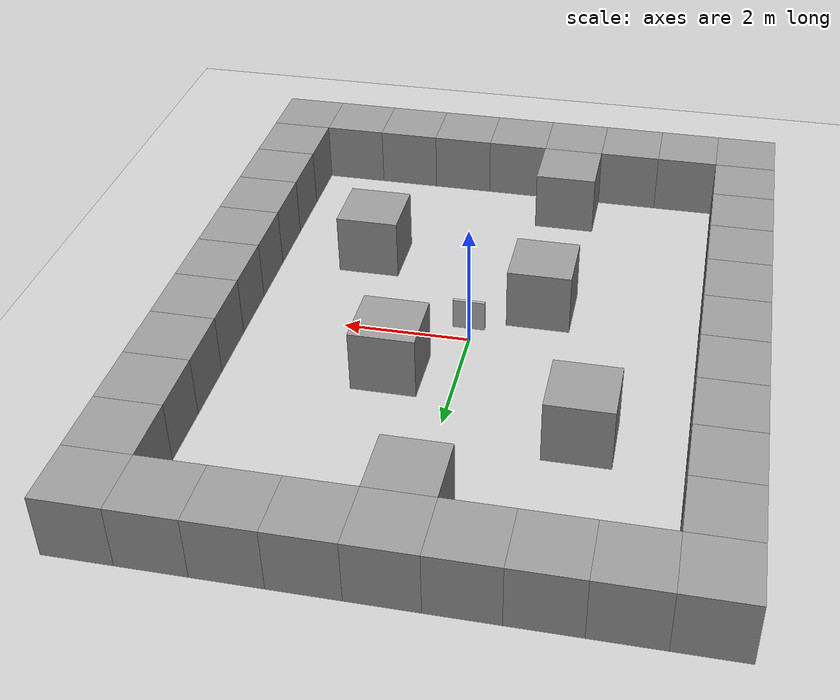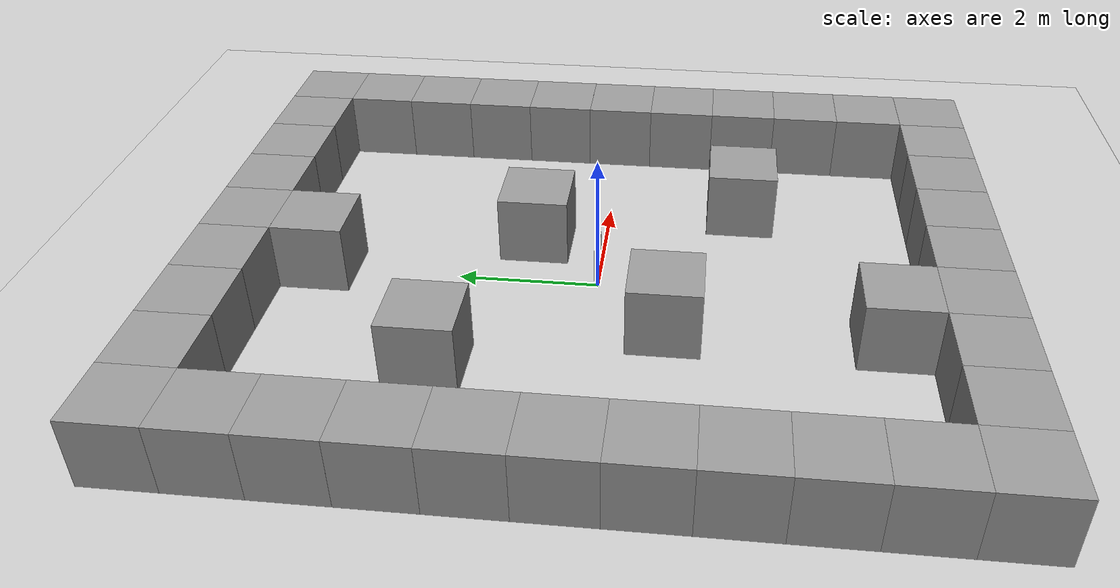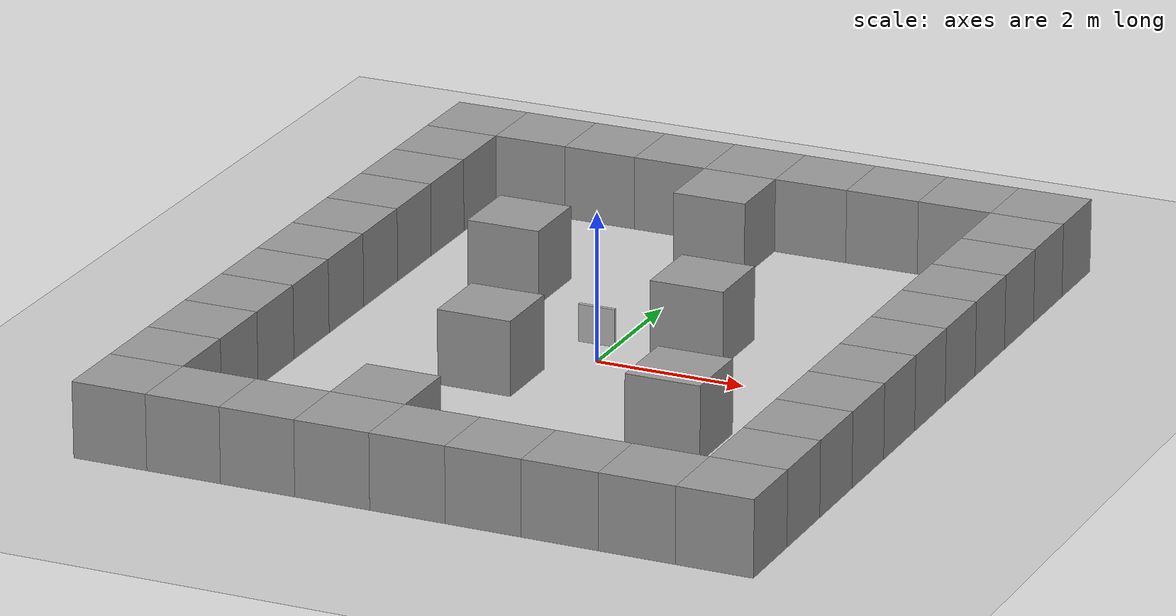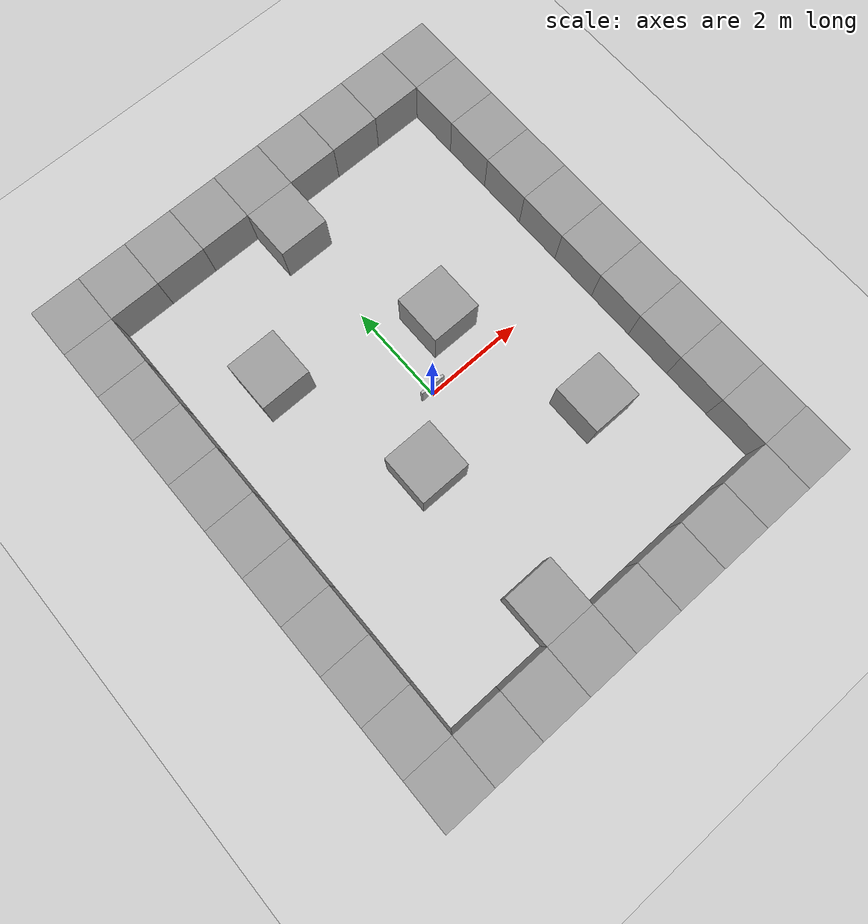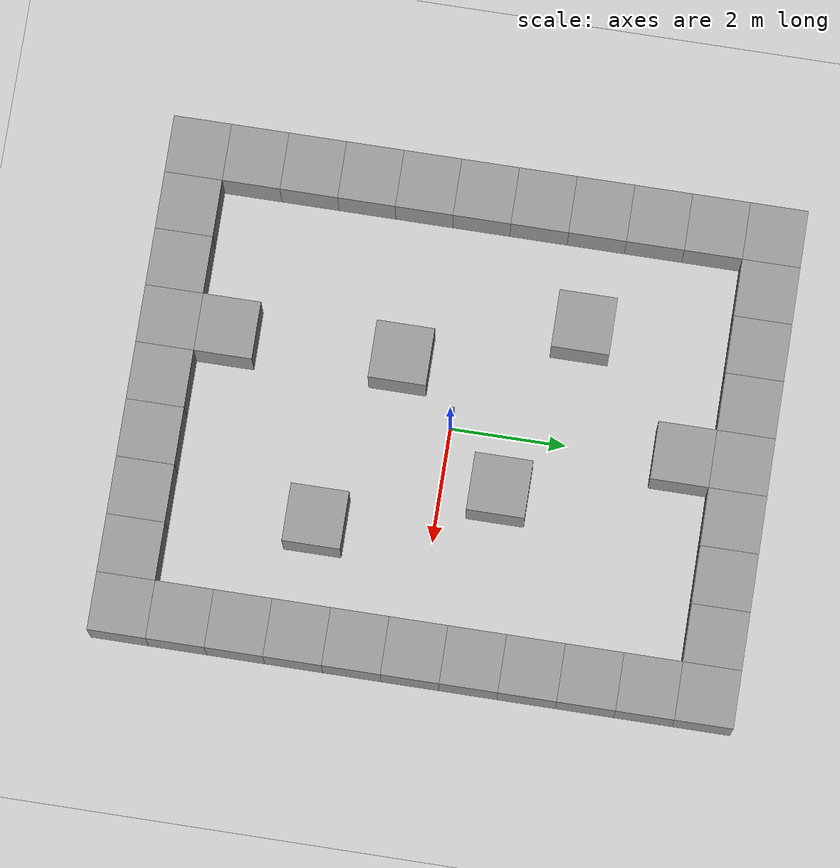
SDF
<sdf version="1.6">
 <world name="default">
  <include><uri>barbiebox</uri><pose>0 0 0.5 0 0 0</pose></include>
  <light name="sun" type="directional">
   <pose>0 0 10 0 -0 0</pose>
   <diffuse>0.8 0.8 0.8 1</diffuse>
   <specular>0.2 0.2 0.2 1</specular>
   <attenuation>
    <range>1000</range>
    <constant>0.9</constant>
    <linear>0.01</linear>
    <quadratic>0.001</quadratic>
   </attenuation>
   <direction>-0.5 0.1 -0.9</direction>
  </light>
  <model name="ground_plane">
   <static>1</static>
   <link name="link">
    <collision name="collision">
     <geometry><plane><normal>0 0 1</normal><size>100 100</size></plane></geometry>
     <surface>
      <contact><collide_bitmask>65535</collide_bitmask></contact>
      <friction><ode><mu>100</mu><mu2>50</mu2></ode></friction>
     </surface>
    </collision>
    <visual name="visual">
     <cast_shadows>0</cast_shadows>
     <geometry><plane><normal>0 0 1</normal><size>100 100</size></plane></geometry>
     <material>
      <script><uri>file://media/materials/scripts/gazebo.material</uri><name>Gazebo/Grey</name></script>
     </material>
    </visual>
   </link>
  </model>
  <gravity>0 0 -9.8</gravity>
  <magnetic_field>6e-06 2.3e-05 -4.2e-05</magnetic_field>
  <atmosphere type="adiabatic"/>
  <physics name="default_physics" default="0" type="ode">
   <max_step_size>0.001</max_step_size>
   <real_time_factor>1</real_time_factor>
   <real_time_update_rate>1000</real_time_update_rate>
  </physics>
  <scene><ambient>0.4 0.4 0.4 1</ambient><background>0.7 0.7 0.7 1</background><shadows>1</shadows></scene>
  <spherical_coordinates>
   <surface_model>EARTH_WGS84</surface_model>
   <latitude_deg>0</latitude_deg>
   <longitude_deg>0</longitude_deg>
   <elevation>0</elevation>
   <heading_deg>0</heading_deg>
  </spherical_coordinates>
  <model name="unit_box">
   <pose>-1 -0.999994 0.499995 -1e-05 -0 -0</pose>
   <link name="link">
    <inertial>
     <mass>1</mass>
     <inertia>
      <ixx>0.166667</ixx>
      <ixy>0</ixy>
      <ixz>0</ixz>
      <iyy>0.166667</iyy>
      <iyz>0</iyz>
      <izz>0.166667</izz>
     </inertia>
    </inertial>
    <collision name="collision"><geometry><box><size>1 1 1</size></box></geometry></collision>
    <visual name="visual">
     <geometry><box><size>1 1 1</size></box></geometry>
     <material>
      <script><name>Gazebo/Grey</name><uri>file://media/materials/scripts/gazebo.material</uri></script>
     </material>
    </visual>
   </link>
  </model>
  <model name="unit_box_0">
   <pose>1 1 0.499995 0 1e-05 0</pose>
   <link name="link">
    <inertial>
     <mass>1</mass>
     <inertia>
      <ixx>0.166667</ixx>
      <ixy>0</ixy>
      <ixz>0</ixz>
      <iyy>0.166667</iyy>
      <iyz>0</iyz>
      <izz>0.166667</izz>
     </inertia>
    </inertial>
    <collision name="collision"><geometry><box><size>1 1 1</size></box></geometry></collision>
    <visual name="visual">
     <geometry><box><size>1 1 1</size></box></geometry>
     <material>
      <script><name>Gazebo/Grey</name><uri>file://media/materials/scripts/gazebo.material</uri></script>
     </material>
    </visual>
   </link>
  </model>
  <model name="unit_box_1">
   <pose>-2 2.00001 0.499995 -1e-05 -0 -0</pose>
   <link name="link">
    <inertial>
     <mass>1</mass>
     <inertia>
      <ixx>0.166667</ixx>
      <ixy>0</ixy>
      <ixz>0</ixz>
      <iyy>0.166667</iyy>
      <iyz>0</iyz>
      <izz>0.166667</izz>
     </inertia>
    </inertial>
    <collision name="collision"><geometry><box><size>1 1 1</size></box></geometry></collision>
    <visual name="visual">
     <geometry><box><size>1 1 1</size></box></geometry>
     <material>
      <script><name>Gazebo/Grey</name><uri>file://media/materials/scripts/gazebo.material</uri></script>
     </material>
    </visual>
   </link>
  </model>
  <model name="unit_box_2">
   <pose>2 -2 0.499995 0 1e-05 0</pose>
   <link name="link">
    <inertial>
     <mass>1</mass>
     <inertia>
      <ixx>0.166667</ixx>
      <ixy>0</ixy>
      <ixz>0</ixz>
      <iyy>0.166667</iyy>
      <iyz>0</iyz>
      <izz>0.166667</izz>
     </inertia>
    </inertial>
    <collision name="collision"><geometry><box><size>1 1 1</size></box></geometry></collision>
    <visual name="visual">
     <geometry><box><size>1 1 1</size></box></geometry>
     <material>
      <script><name>Gazebo/Grey</name><uri>file://media/materials/scripts/gazebo.material</uri></script>
     </material>
    </visual>
   </link>
  </model>
  <model name="unit_box_3">
   <pose>4e-06 3.99999 0.499995 0 -1e-05 2e-06</pose>
   <link name="link">
    <inertial>
     <mass>1</mass>
     <inertia>
      <ixx>0.166667</ixx>
      <ixy>0</ixy>
      <ixz>0</ixz>
      <iyy>0.166667</iyy>
      <iyz>0</iyz>
      <izz>0.166667</izz>
     </inertia>
    </inertial>
    <collision name="collision"><geometry><box><size>1 1 1</size></box></geometry></collision>
    <visual name="visual">
     <geometry><box><size>1 1 1</size></box></geometry>
     <material>
      <script><name>Gazebo/Grey</name><uri>file://media/materials/scripts/gazebo.material</uri></script>
     </material>
    </visual>
   </link>
  </model>
  <model name="unit_box_4">
   <pose>-1.00003 -4 0.499995 0 -1e-05 -2.2e-05</pose>
   <link name="link">
    <inertial>
     <mass>1</mass>
     <inertia>
      <ixx>0.166667</ixx>
      <ixy>0</ixy>
      <ixz>0</ixz>
      <iyy>0.166667</iyy>
      <iyz>0</iyz>
      <izz>0.166667</izz>
     </inertia>
    </inertial>
    <collision name="collision"><geometry><box><size>1 1 1</size></box></geometry></collision>
    <visual name="visual">
     <geometry><box><size>1 1 1</size></box></geometry>
     <material>
      <script><name>Gazebo/Grey</name><uri>file://media/materials/scripts/gazebo.material</uri></script>
     </material>
    </visual>
   </link>
  </model>
  <model name="unit_box_5">
   <pose>-4.00001 5e-06 0.499995 -1e-05 -0 -7e-06</pose>
   <link name="link">
    <inertial>
     <mass>1</mass>
     <inertia>
      <ixx>0.166667</ixx>
      <ixy>0</ixy>
      <ixz>0</ixz>
      <iyy>0.166667</iyy>
      <iyz>0</iyz>
      <izz>0.166667</izz>
     </inertia>
    </inertial>
    <collision name="collision"><geometry><box><size>1 1 1</size></box></geometry></collision>
    <visual name="visual">
     <geometry><box><size>1 1 1</size></box></geometry>
     <material>
      <script><name>Gazebo/Grey</name><uri>file://media/materials/scripts/gazebo.material</uri></script>
     </material>
    </visual>
   </link>
  </model>
  <model name="unit_box_6">
   <pose>-3.99999 1.00001 0.499995 0 1e-05 -1e-06</pose>
   <link name="link">
    <inertial>
     <mass>1</mass>
     <inertia>
      <ixx>0.166667</ixx>
      <ixy>0</ixy>
      <ixz>0</ixz>
      <iyy>0.166667</iyy>
      <iyz>0</iyz>
      <izz>0.166667</izz>
     </inertia>
    </inertial>
    <collision name="collision"><geometry><box><size>1 1 1</size></box></geometry></collision>
    <visual name="visual">
     <geometry><box><size>1 1 1</size></box></geometry>
     <material>
      <script><name>Gazebo/Grey</name><uri>file://media/materials/scripts/gazebo.material</uri></script>
     </material>
    </visual>
   </link>
  </model>
  <model name="unit_box_7">
   <pose>-3.99998 2.00001 0.499995 0 -1e-05 0</pose>
   <link name="link">
    <inertial>
     <mass>1</mass>
     <inertia>
      <ixx>0.166667</ixx>
      <ixy>0</ixy>
      <ixz>0</ixz>
      <iyy>0.166667</iyy>
      <iyz>0</iyz>
      <izz>0.166667</izz>
     </inertia>
    </inertial>
    <collision name="collision"><geometry><box><size>1 1 1</size></box></geometry></collision>
    <visual name="visual">
     <geometry><box><size>1 1 1</size></box></geometry>
     <material>
      <script><name>Gazebo/Grey</name><uri>file://media/materials/scripts/gazebo.material</uri></script>
     </material>
    </visual>
   </link>
  </model>
  <model name="unit_box_8">
   <pose>-4.00003 3.00002 0.5 0 -0 3e-06</pose>
   <link name="link">
    <inertial>
     <mass>1</mass>
     <inertia>
      <ixx>0.166667</ixx>
      <ixy>0</ixy>
      <ixz>0</ixz>
      <iyy>0.166667</iyy>
      <iyz>0</iyz>
      <izz>0.166667</izz>
     </inertia>
    </inertial>
    <collision name="collision"><geometry><box><size>1 1 1</size></box></geometry></collision>
    <visual name="visual">
     <geometry><box><size>1 1 1</size></box></geometry>
     <material>
      <script><name>Gazebo/Grey</name><uri>file://media/materials/scripts/gazebo.material</uri></script>
     </material>
    </visual>
   </link>
  </model>
  <model name="unit_box_9">
   <pose>-3.99998 4.00003 0.499997 -6e-06 -0 1e-06</pose>
   <link name="link">
    <inertial>
     <mass>1</mass>
     <inertia>
      <ixx>0.166667</ixx>
      <ixy>0</ixy>
      <ixz>0</ixz>
      <iyy>0.166667</iyy>
      <iyz>0</iyz>
      <izz>0.166667</izz>
     </inertia>
    </inertial>
    <collision name="collision"><geometry><box><size>1 1 1</size></box></geometry></collision>
    <visual name="visual">
     <geometry><box><size>1 1 1</size></box></geometry>
     <material>
      <script><name>Gazebo/Grey</name><uri>file://media/materials/scripts/gazebo.material</uri></script>
     </material>
    </visual>
   </link>
  </model>
  <model name="unit_box_10">
   <pose>-4 5.00002 0.499997 6e-06 -0 1e-06</pose>
   <link name="link">
    <inertial>
     <mass>1</mass>
     <inertia>
      <ixx>0.166667</ixx>
      <ixy>0</ixy>
      <ixz>0</ixz>
      <iyy>0.166667</iyy>
      <iyz>0</iyz>
      <izz>0.166667</izz>
     </inertia>
    </inertial>
    <collision name="collision"><geometry><box><size>1 1 1</size></box></geometry></collision>
    <visual name="visual">
     <geometry><box><size>1 1 1</size></box></geometry>
     <material>
      <script><name>Gazebo/Grey</name><uri>file://media/materials/scripts/gazebo.material</uri></script>
     </material>
    </visual>
   </link>
  </model>
  <model name="unit_box_11">
   <pose>-2.99999 5.00003 0.5 0 0 -2e-06</pose>
   <link name="link">
    <inertial>
     <mass>1</mass>
     <inertia>
      <ixx>0.166667</ixx>
      <ixy>0</ixy>
      <ixz>0</ixz>
      <iyy>0.166667</iyy>
      <iyz>0</iyz>
      <izz>0.166667</izz>
     </inertia>
    </inertial>
    <collision name="collision"><geometry><box><size>1 1 1</size></box></geometry></collision>
    <visual name="visual">
     <geometry><box><size>1 1 1</size></box></geometry>
     <material>
      <script><name>Gazebo/Grey</name><uri>file://media/materials/scripts/gazebo.material</uri></script>
     </material>
    </visual>
   </link>
  </model>
  <model name="unit_box_12">
   <pose>-1.99998 5 0.499995 -0 1e-05 1e-06</pose>
   <link name="link">
    <inertial>
     <mass>1</mass>
     <inertia>
      <ixx>0.166667</ixx>
      <ixy>0</ixy>
      <ixz>0</ixz>
      <iyy>0.166667</iyy>
      <iyz>0</iyz>
      <izz>0.166667</izz>
     </inertia>
    </inertial>
    <collision name="collision"><geometry><box><size>1 1 1</size></box></geometry></collision>
    <visual name="visual">
     <geometry><box><size>1 1 1</size></box></geometry>
     <material>
      <script><name>Gazebo/Grey</name><uri>file://media/materials/scripts/gazebo.material</uri></script>
     </material>
    </visual>
   </link>
  </model>
  <model name="unit_box_13">
   <pose>-0.999993 4.99999 0.499995 0 -1e-05 2e-06</pose>
   <link name="link">
    <inertial>
     <mass>1</mass>
     <inertia>
      <ixx>0.166667</ixx>
      <ixy>0</ixy>
      <ixz>0</ixz>
      <iyy>0.166667</iyy>
      <iyz>0</iyz>
      <izz>0.166667</izz>
     </inertia>
    </inertial>
    <collision name="collision"><geometry><box><size>1 1 1</size></box></geometry></collision>
    <visual name="visual">
     <geometry><box><size>1 1 1</size></box></geometry>
     <material>
      <script><name>Gazebo/Grey</name><uri>file://media/materials/scripts/gazebo.material</uri></script>
     </material>
    </visual>
   </link>
  </model>
  <model name="unit_box_14">
   <pose>2.1e-05 5 0.5 0 1e-06 2e-06</pose>
   <link name="link">
    <inertial>
     <mass>1</mass>
     <inertia>
      <ixx>0.166667</ixx>
      <ixy>0</ixy>
      <ixz>0</ixz>
      <iyy>0.166667</iyy>
      <iyz>0</iyz>
      <izz>0.166667</izz>
     </inertia>
    </inertial>
    <collision name="collision"><geometry><box><size>1 1 1</size></box></geometry></collision>
    <visual name="visual">
     <geometry><box><size>1 1 1</size></box></geometry>
     <material>
      <script><name>Gazebo/Grey</name><uri>file://media/materials/scripts/gazebo.material</uri></script>
     </material>
    </visual>
   </link>
  </model>
  <model name="unit_box_15">
   <pose>1.00003 4.99999 0.499995 0 9e-06 2e-06</pose>
   <link name="link">
    <inertial>
     <mass>1</mass>
     <inertia>
      <ixx>0.166667</ixx>
      <ixy>0</ixy>
      <ixz>0</ixz>
      <iyy>0.166667</iyy>
      <iyz>0</iyz>
      <izz>0.166667</izz>
     </inertia>
    </inertial>
    <collision name="collision"><geometry><box><size>1 1 1</size></box></geometry></collision>
    <visual name="visual">
     <geometry><box><size>1 1 1</size></box></geometry>
     <material>
      <script><name>Gazebo/Grey</name><uri>file://media/materials/scripts/gazebo.material</uri></script>
     </material>
    </visual>
   </link>
  </model>
  <model name="unit_box_16">
   <pose>2.00002 5.00001 0.499995 -1e-05 -0 2e-06</pose>
   <link name="link">
    <inertial>
     <mass>1</mass>
     <inertia>
      <ixx>0.166667</ixx>
      <ixy>0</ixy>
      <ixz>0</ixz>
      <iyy>0.166667</iyy>
      <iyz>0</iyz>
      <izz>0.166667</izz>
     </inertia>
    </inertial>
    <collision name="collision"><geometry><box><size>1 1 1</size></box></geometry></collision>
    <visual name="visual">
     <geometry><box><size>1 1 1</size></box></geometry>
     <material>
      <script><name>Gazebo/Grey</name><uri>file://media/materials/scripts/gazebo.material</uri></script>
     </material>
    </visual>
   </link>
  </model>
  <model name="unit_box_17">
   <pose>3.99999 -2 0.5 0 -0 0</pose>
   <link name="link">
    <inertial>
     <mass>1</mass>
     <inertia>
      <ixx>0.166667</ixx>
      <ixy>0</ixy>
      <ixz>0</ixz>
      <iyy>0.166667</iyy>
      <iyz>0</iyz>
      <izz>0.166667</izz>
     </inertia>
    </inertial>
    <collision name="collision"><geometry><box><size>1 1 1</size></box></geometry></collision>
    <visual name="visual">
     <geometry><box><size>1 1 1</size></box></geometry>
     <material>
      <script><name>Gazebo/Grey</name><uri>file://media/materials/scripts/gazebo.material</uri></script>
     </material>
    </visual>
   </link>
  </model>
  <model name="unit_box_18">
   <pose>3.99999 -0.99999 0.499995 -1e-05 -0 2e-06</pose>
   <link name="link">
    <inertial>
     <mass>1</mass>
     <inertia>
      <ixx>0.166667</ixx>
      <ixy>0</ixy>
      <ixz>0</ixz>
      <iyy>0.166667</iyy>
      <iyz>0</iyz>
      <izz>0.166667</izz>
     </inertia>
    </inertial>
    <collision name="collision"><geometry><box><size>1 1 1</size></box></geometry></collision>
    <visual name="visual">
     <geometry><box><size>1 1 1</size></box></geometry>
     <material>
      <script><name>Gazebo/Grey</name><uri>file://media/materials/scripts/gazebo.material</uri></script>
     </material>
    </visual>
   </link>
  </model>
  <model name="unit_box_19">
   <pose>4 1.2e-05 0.499995 -0 1e-05 4e-06</pose>
   <link name="link">
    <inertial>
     <mass>1</mass>
     <inertia>
      <ixx>0.166667</ixx>
      <ixy>0</ixy>
      <ixz>0</ixz>
      <iyy>0.166667</iyy>
      <iyz>0</iyz>
      <izz>0.166667</izz>
     </inertia>
    </inertial>
    <collision name="collision"><geometry><box><size>1 1 1</size></box></geometry></collision>
    <visual name="visual">
     <geometry><box><size>1 1 1</size></box></geometry>
     <material>
      <script><name>Gazebo/Grey</name><uri>file://media/materials/scripts/gazebo.material</uri></script>
     </material>
    </visual>
   </link>
  </model>
  <model name="unit_box_20">
   <pose>4 1.00002 0.499995 0 -1e-05 6e-06</pose>
   <link name="link">
    <inertial>
     <mass>1</mass>
     <inertia>
      <ixx>0.166667</ixx>
      <ixy>0</ixy>
      <ixz>0</ixz>
      <iyy>0.166667</iyy>
      <iyz>0</iyz>
      <izz>0.166667</izz>
     </inertia>
    </inertial>
    <collision name="collision"><geometry><box><size>1 1 1</size></box></geometry></collision>
    <visual name="visual">
     <geometry><box><size>1 1 1</size></box></geometry>
     <material>
      <script><name>Gazebo/Grey</name><uri>file://media/materials/scripts/gazebo.material</uri></script>
     </material>
    </visual>
   </link>
  </model>
  <model name="unit_box_21">
   <pose>3.99999 2.00002 0.5 0 -0 6e-06</pose>
   <link name="link">
    <inertial>
     <mass>1</mass>
     <inertia>
      <ixx>0.166667</ixx>
      <ixy>0</ixy>
      <ixz>0</ixz>
      <iyy>0.166667</iyy>
      <iyz>0</iyz>
      <izz>0.166667</izz>
     </inertia>
    </inertial>
    <collision name="collision"><geometry><box><size>1 1 1</size></box></geometry></collision>
    <visual name="visual">
     <geometry><box><size>1 1 1</size></box></geometry>
     <material>
      <script><name>Gazebo/Grey</name><uri>file://media/materials/scripts/gazebo.material</uri></script>
     </material>
    </visual>
   </link>
  </model>
  <model name="unit_box_22">
   <pose>4 3.00002 0.499995 1e-05 -0 6e-06</pose>
   <link name="link">
    <inertial>
     <mass>1</mass>
     <inertia>
      <ixx>0.166667</ixx>
      <ixy>0</ixy>
      <ixz>0</ixz>
      <iyy>0.166667</iyy>
      <iyz>0</iyz>
      <izz>0.166667</izz>
     </inertia>
    </inertial>
    <collision name="collision"><geometry><box><size>1 1 1</size></box></geometry></collision>
    <visual name="visual">
     <geometry><box><size>1 1 1</size></box></geometry>
     <material>
      <script><name>Gazebo/Grey</name><uri>file://media/materials/scripts/gazebo.material</uri></script>
     </material>
    </visual>
   </link>
  </model>
  <model name="unit_box_23">
   <pose>4.00004 4.00003 0.499995 -1e-05 0 -1e-06</pose>
   <link name="link">
    <inertial>
     <mass>1</mass>
     <inertia>
      <ixx>0.166667</ixx>
      <ixy>0</ixy>
      <ixz>0</ixz>
      <iyy>0.166667</iyy>
      <iyz>0</iyz>
      <izz>0.166667</izz>
     </inertia>
    </inertial>
    <collision name="collision"><geometry><box><size>1 1 1</size></box></geometry></collision>
    <visual name="visual">
     <geometry><box><size>1 1 1</size></box></geometry>
     <material>
      <script><name>Gazebo/Grey</name><uri>file://media/materials/scripts/gazebo.material</uri></script>
     </material>
    </visual>
   </link>
  </model>
  <model name="unit_box_24">
   <pose>3.00003 5 0.499995 -1e-05 -0 4e-06</pose>
   <link name="link">
    <inertial>
     <mass>1</mass>
     <inertia>
      <ixx>0.166667</ixx>
      <ixy>0</ixy>
      <ixz>0</ixz>
      <iyy>0.166667</iyy>
      <iyz>0</iyz>
      <izz>0.166667</izz>
     </inertia>
    </inertial>
    <collision name="collision"><geometry><box><size>1 1 1</size></box></geometry></collision>
    <visual name="visual">
     <geometry><box><size>1 1 1</size></box></geometry>
     <material>
      <script><name>Gazebo/Grey</name><uri>file://media/materials/scripts/gazebo.material</uri></script>
     </material>
    </visual>
   </link>
  </model>
  <model name="unit_box_25">
   <pose>4.00003 5.00003 0.499995 1e-05 -0 -1e-06</pose>
   <link name="link">
    <inertial>
     <mass>1</mass>
     <inertia>
      <ixx>0.166667</ixx>
      <ixy>0</ixy>
      <ixz>0</ixz>
      <iyy>0.166667</iyy>
      <iyz>0</iyz>
      <izz>0.166667</izz>
     </inertia>
    </inertial>
    <collision name="collision"><geometry><box><size>1 1 1</size></box></geometry></collision>
    <visual name="visual">
     <geometry><box><size>1 1 1</size></box></geometry>
     <material>
      <script><name>Gazebo/Grey</name><uri>file://media/materials/scripts/gazebo.material</uri></script>
     </material>
    </visual>
   </link>
  </model>
  <model name="unit_box_26">
   <pose>4.00002 -3 0.499995 0 1e-05 -1e-06</pose>
   <link name="link">
    <inertial>
     <mass>1</mass>
     <inertia>
      <ixx>0.166667</ixx>
      <ixy>0</ixy>
      <ixz>0</ixz>
      <iyy>0.166667</iyy>
      <iyz>0</iyz>
      <izz>0.166667</izz>
     </inertia>
    </inertial>
    <collision name="collision"><geometry><box><size>1 1 1</size></box></geometry></collision>
    <visual name="visual">
     <geometry><box><size>1 1 1</size></box></geometry>
     <material>
      <script><name>Gazebo/Grey</name><uri>file://media/materials/scripts/gazebo.material</uri></script>
     </material>
    </visual>
   </link>
  </model>
  <model name="unit_box_27">
   <pose>4.00001 -4.00001 0.499995 0 1e-05 -7e-06</pose>
   <link name="link">
    <inertial>
     <mass>1</mass>
     <inertia>
      <ixx>0.166667</ixx>
      <ixy>0</ixy>
      <ixz>0</ixz>
      <iyy>0.166667</iyy>
      <iyz>0</iyz>
      <izz>0.166667</izz>
     </inertia>
    </inertial>
    <collision name="collision"><geometry><box><size>1 1 1</size></box></geometry></collision>
    <visual name="visual">
     <geometry><box><size>1 1 1</size></box></geometry>
     <material>
      <script><name>Gazebo/Grey</name><uri>file://media/materials/scripts/gazebo.material</uri></script>
     </material>
    </visual>
   </link>
  </model>
  <model name="unit_box_28">
   <pose>4.00001 -5.00002 0.499995 0 1e-05 -7e-06</pose>
   <link name="link">
    <inertial>
     <mass>1</mass>
     <inertia>
      <ixx>0.166667</ixx>
      <ixy>0</ixy>
      <ixz>0</ixz>
      <iyy>0.166667</iyy>
      <iyz>0</iyz>
      <izz>0.166667</izz>
     </inertia>
    </inertial>
    <collision name="collision"><geometry><box><size>1 1 1</size></box></geometry></collision>
    <visual name="visual">
     <geometry><box><size>1 1 1</size></box></geometry>
     <material>
      <script><name>Gazebo/Grey</name><uri>file://media/materials/scripts/gazebo.material</uri></script>
     </material>
    </visual>
   </link>
  </model>
  <model name="unit_box_29">
   <pose>2.99999 -5 0.499995 -0 9e-06 -1.7e-05</pose>
   <link name="link">
    <inertial>
     <mass>1</mass>
     <inertia>
      <ixx>0.166667</ixx>
      <ixy>0</ixy>
      <ixz>0</ixz>
      <iyy>0.166667</iyy>
      <iyz>0</iyz>
      <izz>0.166667</izz>
     </inertia>
    </inertial>
    <collision name="collision"><geometry><box><size>1 1 1</size></box></geometry></collision>
    <visual name="visual">
     <geometry><box><size>1 1 1</size></box></geometry>
     <material>
      <script><name>Gazebo/Grey</name><uri>file://media/materials/scripts/gazebo.material</uri></script>
     </material>
    </visual>
   </link>
  </model>
  <model name="unit_box_30">
   <pose>1.99998 -4.99999 0.499999 0 2e-06 -1.4e-05</pose>
   <link name="link">
    <inertial>
     <mass>1</mass>
     <inertia>
      <ixx>0.166667</ixx>
      <ixy>0</ixy>
      <ixz>0</ixz>
      <iyy>0.166667</iyy>
      <iyz>0</iyz>
      <izz>0.166667</izz>
     </inertia>
    </inertial>
    <collision name="collision"><geometry><box><size>1 1 1</size></box></geometry></collision>
    <visual name="visual">
     <geometry><box><size>1 1 1</size></box></geometry>
     <material>
      <script><name>Gazebo/Grey</name><uri>file://media/materials/scripts/gazebo.material</uri></script>
     </material>
    </visual>
   </link>
  </model>
  <model name="unit_box_31">
   <pose>0.999975 -4.99996 0.5 0 0 -1.9e-05</pose>
   <link name="link">
    <inertial>
     <mass>1</mass>
     <inertia>
      <ixx>0.166667</ixx>
      <ixy>0</ixy>
      <ixz>0</ixz>
      <iyy>0.166667</iyy>
      <iyz>0</iyz>
      <izz>0.166667</izz>
     </inertia>
    </inertial>
    <collision name="collision"><geometry><box><size>1 1 1</size></box></geometry></collision>
    <visual name="visual">
     <geometry><box><size>1 1 1</size></box></geometry>
     <material>
      <script><name>Gazebo/Grey</name><uri>file://media/materials/scripts/gazebo.material</uri></script>
     </material>
    </visual>
   </link>
  </model>
  <model name="unit_box_32">
   <pose>-2.6e-05 -5.00001 0.5 -0 -0 -1.9e-05</pose>
   <link name="link">
    <inertial>
     <mass>1</mass>
     <inertia>
      <ixx>0.166667</ixx>
      <ixy>0</ixy>
      <ixz>0</ixz>
      <iyy>0.166667</iyy>
      <iyz>0</iyz>
      <izz>0.166667</izz>
     </inertia>
    </inertial>
    <collision name="collision"><geometry><box><size>1 1 1</size></box></geometry></collision>
    <visual name="visual">
     <geometry><box><size>1 1 1</size></box></geometry>
     <material>
      <script><name>Gazebo/Grey</name><uri>file://media/materials/scripts/gazebo.material</uri></script>
     </material>
    </visual>
   </link>
  </model>
  <model name="unit_box_33">
   <pose>-1.00003 -5.00004 0.499995 9e-06 -0 -2.1e-05</pose>
   <link name="link">
    <inertial>
     <mass>1</mass>
     <inertia>
      <ixx>0.166667</ixx>
      <ixy>0</ixy>
      <ixz>0</ixz>
      <iyy>0.166667</iyy>
      <iyz>0</iyz>
      <izz>0.166667</izz>
     </inertia>
    </inertial>
    <collision name="collision"><geometry><box><size>1 1 1</size></box></geometry></collision>
    <visual name="visual">
     <geometry><box><size>1 1 1</size></box></geometry>
     <material>
      <script><name>Gazebo/Grey</name><uri>file://media/materials/scripts/gazebo.material</uri></script>
     </material>
    </visual>
   </link>
  </model>
  <model name="unit_box_34">
   <pose>-2.00003 -4.99998 0.499998 1e-06 -4e-06 -2.2e-05</pose>
   <link name="link">
    <inertial>
     <mass>1</mass>
     <inertia>
      <ixx>0.166667</ixx>
      <ixy>0</ixy>
      <ixz>0</ixz>
      <iyy>0.166667</iyy>
      <iyz>0</iyz>
      <izz>0.166667</izz>
     </inertia>
    </inertial>
    <collision name="collision"><geometry><box><size>1 1 1</size></box></geometry></collision>
    <visual name="visual">
     <geometry><box><size>1 1 1</size></box></geometry>
     <material>
      <script><name>Gazebo/Grey</name><uri>file://media/materials/scripts/gazebo.material</uri></script>
     </material>
    </visual>
   </link>
  </model>
  <model name="unit_box_35">
   <pose>-3.00004 -5.00005 0.5 0 0 -6e-06</pose>
   <link name="link">
    <inertial>
     <mass>1</mass>
     <inertia>
      <ixx>0.166667</ixx>
      <ixy>0</ixy>
      <ixz>0</ixz>
      <iyy>0.166667</iyy>
      <iyz>0</iyz>
      <izz>0.166667</izz>
     </inertia>
    </inertial>
    <collision name="collision"><geometry><box><size>1 1 1</size></box></geometry></collision>
    <visual name="visual">
     <geometry><box><size>1 1 1</size></box></geometry>
     <material>
      <script><name>Gazebo/Grey</name><uri>file://media/materials/scripts/gazebo.material</uri></script>
     </material>
    </visual>
   </link>
  </model>
  <model name="unit_box_36">
   <pose>-4.00001 -1 0.499995 0 -1e-05 -1.1e-05</pose>
   <link name="link">
    <inertial>
     <mass>1</mass>
     <inertia>
      <ixx>0.166667</ixx>
      <ixy>0</ixy>
      <ixz>0</ixz>
      <iyy>0.166667</iyy>
      <iyz>0</iyz>
      <izz>0.166667</izz>
     </inertia>
    </inertial>
    <collision name="collision"><geometry><box><size>1 1 1</size></box></geometry></collision>
    <visual name="visual">
     <geometry><box><size>1 1 1</size></box></geometry>
     <material>
      <script><name>Gazebo/Grey</name><uri>file://media/materials/scripts/gazebo.material</uri></script>
     </material>
    </visual>
   </link>
  </model>
  <model name="unit_box_37">
   <pose>-4.00001 -2.00001 0.499995 0 1e-05 -1.6e-05</pose>
   <link name="link">
    <inertial>
     <mass>1</mass>
     <inertia>
      <ixx>0.166667</ixx>
      <ixy>0</ixy>
      <ixz>0</ixz>
      <iyy>0.166667</iyy>
      <iyz>0</iyz>
      <izz>0.166667</izz>
     </inertia>
    </inertial>
    <collision name="collision"><geometry><box><size>1 1 1</size></box></geometry></collision>
    <visual name="visual">
     <geometry><box><size>1 1 1</size></box></geometry>
     <material>
      <script><name>Gazebo/Grey</name><uri>file://media/materials/scripts/gazebo.material</uri></script>
     </material>
    </visual>
   </link>
  </model>
  <model name="unit_box_38">
   <pose>-4.00002 -3.00002 0.5 0 0 -6e-06</pose>
   <link name="link">
    <inertial>
     <mass>1</mass>
     <inertia>
      <ixx>0.166667</ixx>
      <ixy>0</ixy>
      <ixz>0</ixz>
      <iyy>0.166667</iyy>
      <iyz>0</iyz>
      <izz>0.166667</izz>
     </inertia>
    </inertial>
    <collision name="collision"><geometry><box><size>1 1 1</size></box></geometry></collision>
    <visual name="visual">
     <geometry><box><size>1 1 1</size></box></geometry>
     <material>
      <script><name>Gazebo/Grey</name><uri>file://media/materials/scripts/gazebo.material</uri></script>
     </material>
    </visual>
   </link>
  </model>
  <model name="unit_box_39">
   <pose>-4.00003 -4.00003 0.5 -0 -0 -3e-06</pose>
   <link name="link">
    <inertial>
     <mass>1</mass>
     <inertia>
      <ixx>0.166667</ixx>
      <ixy>0</ixy>
      <ixz>0</ixz>
      <iyy>0.166667</iyy>
      <iyz>0</iyz>
      <izz>0.166667</izz>
     </inertia>
    </inertial>
    <collision name="collision"><geometry><box><size>1 1 1</size></box></geometry></collision>
    <visual name="visual">
     <geometry><box><size>1 1 1</size></box></geometry>
     <material>
      <script><name>Gazebo/Grey</name><uri>file://media/materials/scripts/gazebo.material</uri></script>
     </material>
    </visual>
   </link>
  </model>
  <model name="unit_box_40">
   <pose>-4.00004 -5.00003 0.499998 -4e-06 -0 -5e-06</pose>
   <link name="link">
    <inertial>
     <mass>1</mass>
     <inertia>
      <ixx>0.166667</ixx>
      <ixy>0</ixy>
      <ixz>0</ixz>
      <iyy>0.166667</iyy>
      <iyz>0</iyz>
      <izz>0.166667</izz>
     </inertia>
    </inertial>
    <collision name="collision"><geometry><box><size>1 1 1</size></box></geometry></collision>
    <visual name="visual">
     <geometry><box><size>1 1 1</size></box></geometry>
     <material>
      <script><name>Gazebo/Grey</name><uri>file://media/materials/scripts/gazebo.material</uri></script>
     </material>
    </visual>
   </link>
  </model>
 </world>
</sdf>

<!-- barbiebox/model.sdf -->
<sdf version="1.6">
  <model name="barbiebox">
    <static>true</static>
    <link name="box_link">
      <collision name="body_collision">
        <geometry>
          <box>
           <size>0.5 0.05 0.5</size>
          </box>
        </geometry>
      </collision>
      <visual name="body_visual">
        <geometry>
          <box>
            <size>0.5 0.05 0.5</size>
          </box>
        </geometry>
        <material>
          <script>
            <uri>model://barbiebox/scripts</uri>
            <uri>model://barbiebox/textures</uri>
            <name>BarbieTexture</name>
          </script>
        </material>
      </visual>
    </link>
  </model>
</sdf>
